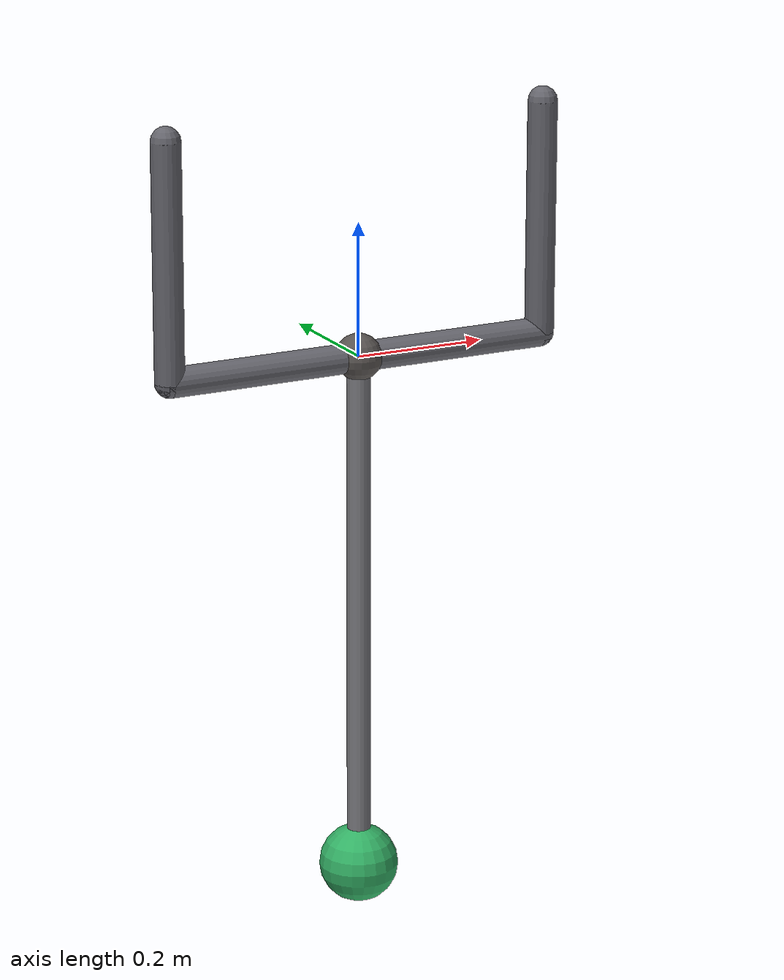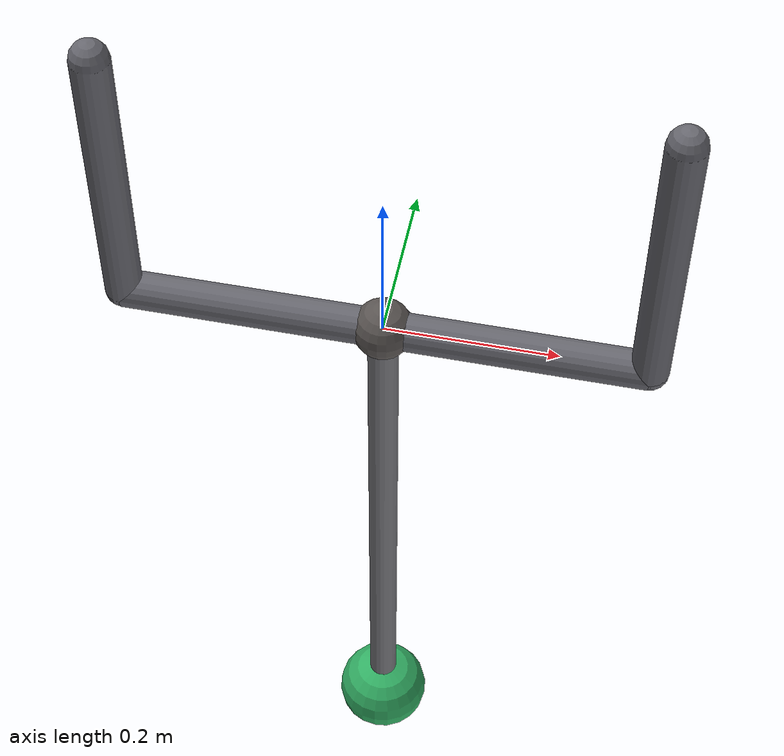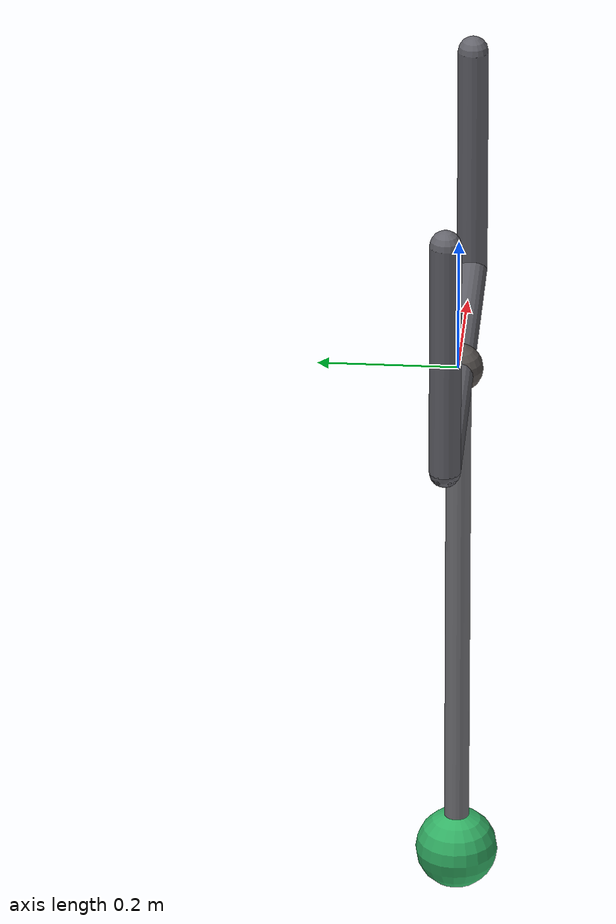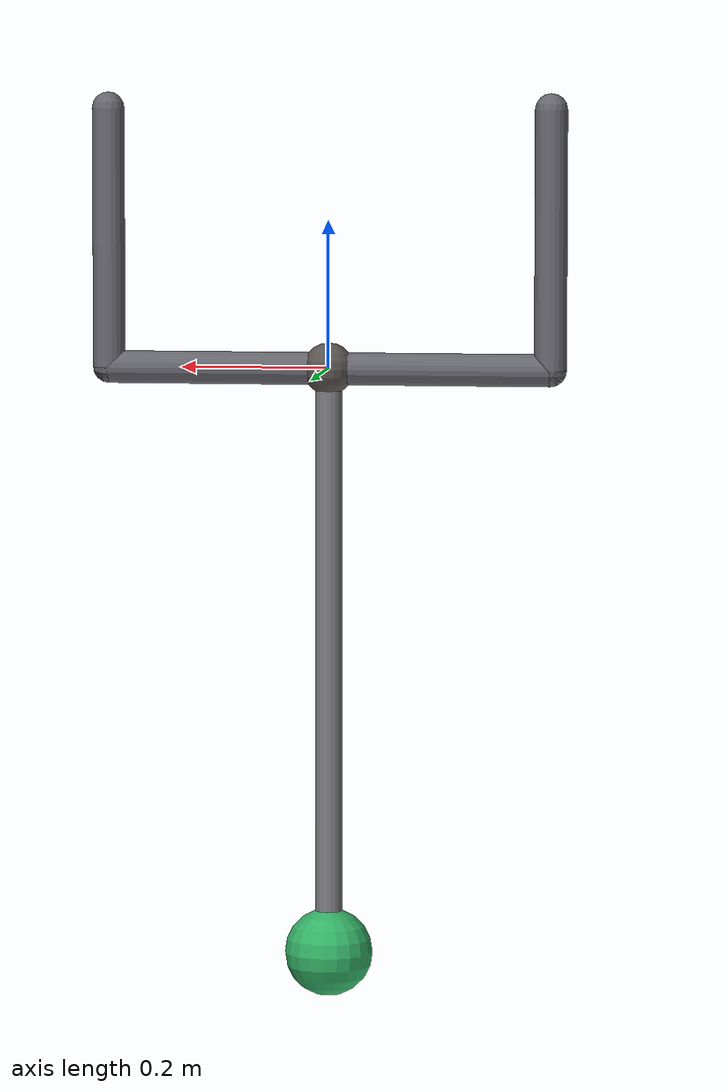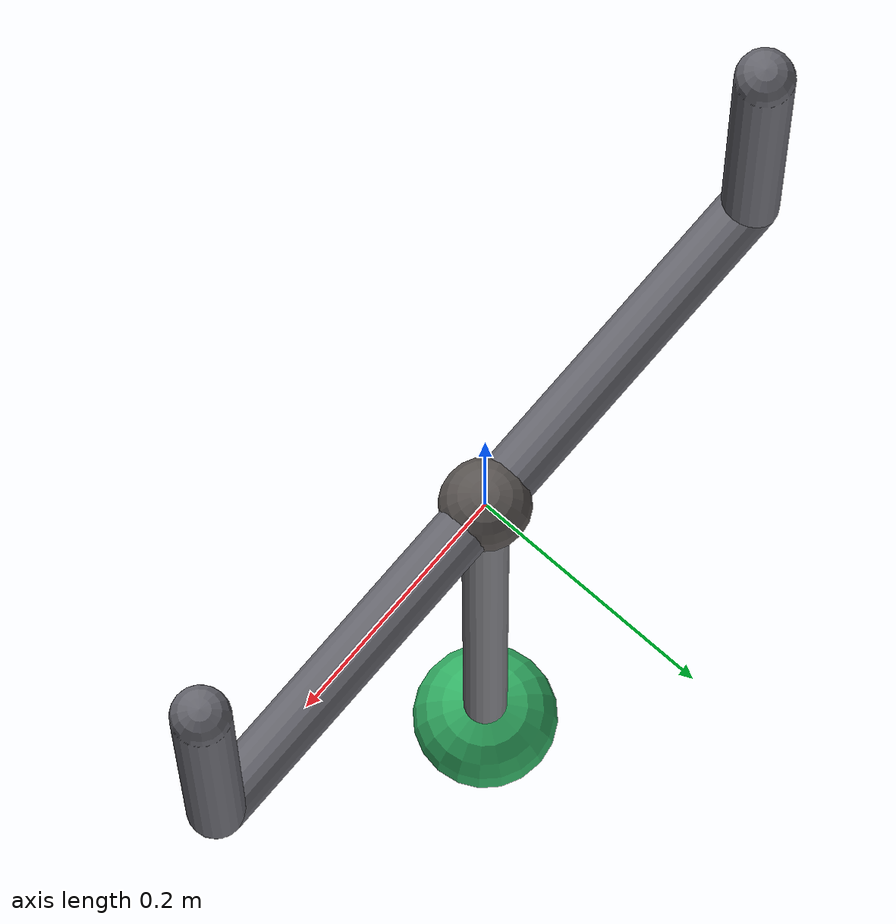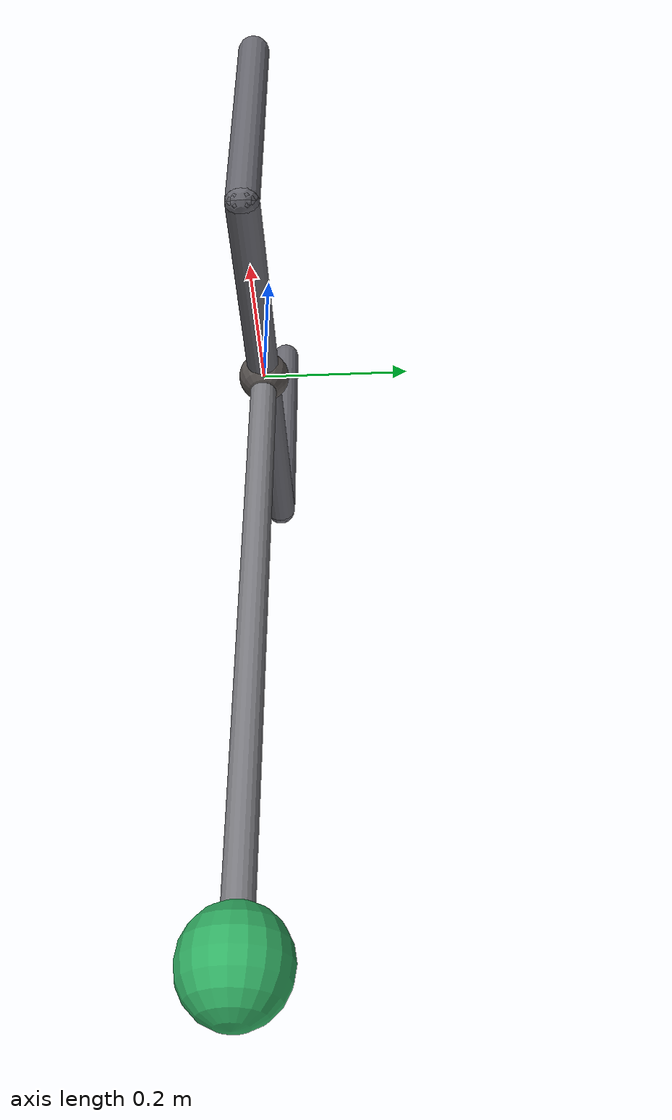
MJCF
<mujoco model="conical_pendulum">
    <compiler angle="radian"/>
    <option gravity="0 0 -9.81" timestep="0.001" integrator="RK4">
        <flag energy="enable"/>
    </option>

    <default>
        <geom contype="0" conaffinity="0"/>
    </default>

    <worldbody>
        <!-- Support frame -->
        <geom name="beam" type="capsule" size="0.022"
              fromto="-0.3 0 0  0.3 0 0" rgba="0.40 0.40 0.43 1"/>
        <geom name="post_l" type="capsule" size="0.022"
              fromto="-0.3 0 0  -0.3 0 0.35" rgba="0.40 0.40 0.43 1"/>
        <geom name="post_r" type="capsule" size="0.022"
              fromto="0.3 0 0  0.3 0 0.35" rgba="0.40 0.40 0.43 1"/>

        <!-- Pendulum: unlimited ball joint, zero damping -->
        <body name="pendulum" pos="0 0 0">
            <joint name="ball" type="ball" damping="0"/>
            <inertial pos="0 0 -0.8" mass="1.0" diaginertia="0.001 0.001 0.001"/>
            <geom name="socket" type="sphere" size="0.035"
                  pos="0 0 0" rgba="0.35 0.33 0.32 1"/>
            <geom name="rod" type="capsule" size="0.018"
                  fromto="0 0 0  0 0 -0.8" rgba="0.48 0.48 0.50 1"/>
            <geom name="tip" type="sphere" size="0.06"
                  pos="0 0 -0.8" rgba="0.2 0.7 0.4 1"/>
        </body>
    </worldbody>
</mujoco>
